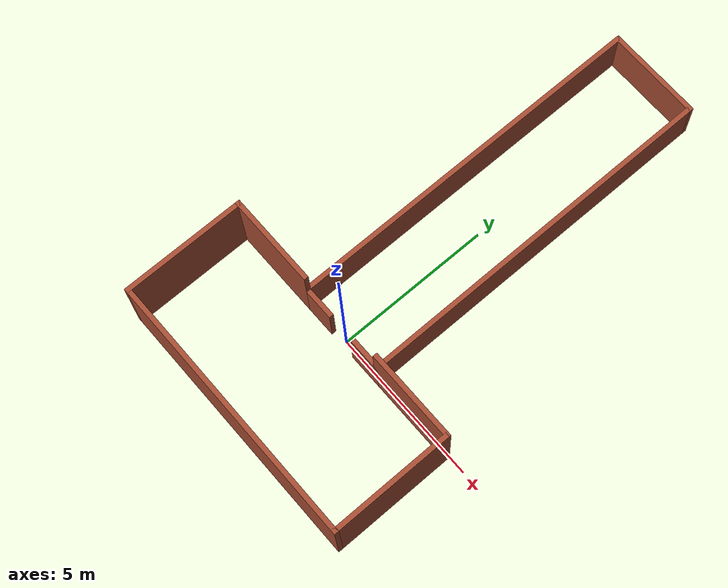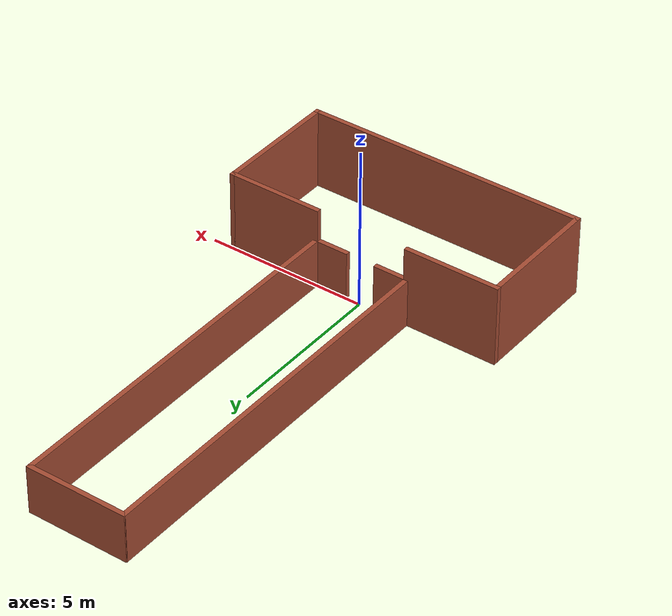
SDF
<?xml version='1.0'?>
<sdf version='1.7'>
  <model name='train_body'>
    <pose>-0.0055 3.9335 0 0 -0 0</pose>
    <link name='Wall_12'>
      <pose>0 -4.0165 0 0 -0 3.14159</pose>
      <visual name='Wall_12_Visual_0'>
        <pose>-1.01653 0 0.75 0 -0 0</pose>
        <geometry>
          <box>
            <size>1.12829 0.15 1.5</size>
          </box>
        </geometry>
        <material>
          <script>
            <uri>file://media/materials/scripts/gazebo.material</uri>
            <name>Gazebo/Bricks</name>
          </script>
          <ambient>1 1 1 1</ambient>
        </material>
        <meta>
          <layer>0</layer>
        </meta>
      </visual>
      <collision name='Wall_12_Collision_0'>
        <geometry>
          <box>
            <size>1.12829 0.15 1.5</size>
          </box>
        </geometry>
        <pose>-1.01653 0 0.75 0 -0 0</pose>
      </collision>
      <visual name='Wall_12_Visual_1'>
        <pose>1.01414 0 0.75 0 -0 0</pose>
        <geometry>
          <box>
            <size>1.13307 0.15 1.5</size>
          </box>
        </geometry>
        <material>
          <script>
            <uri>file://media/materials/scripts/gazebo.material</uri>
            <name>Gazebo/Bricks</name>
          </script>
          <ambient>1 1 1 1</ambient>
        </material>
        <meta>
          <layer>0</layer>
        </meta>
      </visual>
      <collision name='Wall_12_Collision_1'>
        <geometry>
          <box>
            <size>1.13307 0.15 1.5</size>
          </box>
        </geometry>
        <pose>1.01414 0 0.75 0 -0 0</pose>
      </collision>
    </link>
    <link name='Wall_14'>
      <collision name='Wall_14_Collision'>
        <geometry>
          <box>
            <size>12 0.15 1.5</size>
          </box>
        </geometry>
        <pose>0 0 0.75 0 -0 0</pose>
      </collision>
      <visual name='Wall_14_Visual'>
        <pose>0 0 0.75 0 -0 0</pose>
        <geometry>
          <box>
            <size>12 0.15 1.5</size>
          </box>
        </geometry>
        <material>
          <script>
            <uri>file://media/materials/scripts/gazebo.material</uri>
            <name>Gazebo/Bricks</name>
          </script>
          <ambient>1 1 1 1</ambient>
        </material>
        <meta>
          <layer>0</layer>
        </meta>
      </visual>
      <pose>1.5055 1.9085 0 0 -0 1.5708</pose>
    </link>
    <link name='Wall_17'>
      <collision name='Wall_17_Collision'>
        <geometry>
          <box>
            <size>12 0.15 1.5</size>
          </box>
        </geometry>
        <pose>0 0 0.75 0 -0 0</pose>
      </collision>
      <visual name='Wall_17_Visual'>
        <pose>0 0 0.75 0 -0 0</pose>
        <geometry>
          <box>
            <size>12 0.15 1.5</size>
          </box>
        </geometry>
        <material>
          <script>
            <uri>file://media/materials/scripts/gazebo.material</uri>
            <name>Gazebo/Bricks</name>
          </script>
          <ambient>1 1 1 1</ambient>
        </material>
        <meta>
          <layer>0</layer>
        </meta>
      </visual>
      <pose>-1.50568 1.9085 0 0 -0 1.57083</pose>
    </link>
    <link name='Wall_19'>
      <collision name='Wall_19_Collision'>
        <geometry>
          <box>
            <size>3.15 0.15 1.5</size>
          </box>
        </geometry>
        <pose>0 0 0.75 0 -0 0</pose>
      </collision>
      <visual name='Wall_19_Visual'>
        <pose>0 0 0.75 0 -0 0</pose>
        <geometry>
          <box>
            <size>3.15 0.15 1.5</size>
          </box>
        </geometry>
        <material>
          <script>
            <uri>file://media/materials/scripts/gazebo.material</uri>
            <name>Gazebo/Bricks</name>
          </script>
          <ambient>1 1 1 1</ambient>
        </material>
        <meta>
          <layer>0</layer>
        </meta>
      </visual>
      <pose>0.0055 7.8665 0 0 -0 0</pose>
    </link>
    <link name='Wall_21'>
      <collision name='Wall_21_Collision'>
        <geometry>
          <box>
            <size>3 0.15 2.5</size>
          </box>
        </geometry>
        <pose>0 0 1.25 0 -0 0</pose>
      </collision>
      <visual name='Wall_21_Visual'>
        <pose>0 0 1.25 0 -0 0</pose>
        <geometry>
          <box>
            <size>3 0.15 2.5</size>
          </box>
        </geometry>
        <material>
          <script>
            <uri>file://media/materials/scripts/gazebo.material</uri>
            <name>Gazebo/Bricks</name>
          </script>
          <ambient>1 1 1 1</ambient>
        </material>
        <meta>
          <layer>0</layer>
        </meta>
      </visual>
      <pose>-2.9305 -4.0165 0 0 -0 3.14159</pose>
    </link>
    <link name='Wall_22'>
      <collision name='Wall_22_Collision'>
        <geometry>
          <box>
            <size>4 0.15 2.5</size>
          </box>
        </geometry>
        <pose>0 0 1.25 0 -0 0</pose>
      </collision>
      <visual name='Wall_22_Visual'>
        <pose>0 0 1.25 0 -0 0</pose>
        <geometry>
          <box>
            <size>4 0.15 2.5</size>
          </box>
        </geometry>
        <material>
          <script>
            <uri>file://media/materials/scripts/gazebo.material</uri>
            <name>Gazebo/Bricks</name>
          </script>
          <ambient>1 1 1 1</ambient>
        </material>
        <meta>
          <layer>0</layer>
        </meta>
      </visual>
      <pose>-4.3555 -5.9415 0 0 -0 -1.5708</pose>
    </link>
    <link name='Wall_24'>
      <collision name='Wall_24_Collision'>
        <geometry>
          <box>
            <size>3 0.15 2.5</size>
          </box>
        </geometry>
        <pose>0 0 1.25 0 -0 0</pose>
      </collision>
      <visual name='Wall_24_Visual'>
        <pose>0 0 1.25 0 -0 0</pose>
        <geometry>
          <box>
            <size>3 0.15 2.5</size>
          </box>
        </geometry>
        <material>
          <script>
            <uri>file://media/materials/scripts/gazebo.material</uri>
            <name>Gazebo/Bricks</name>
          </script>
          <ambient>1 1 1 1</ambient>
        </material>
        <meta>
          <layer>0</layer>
        </meta>
      </visual>
      <pose>2.9305 -4.0165 0 0 -0 0</pose>
    </link>
    <link name='Wall_25'>
      <collision name='Wall_25_Collision'>
        <geometry>
          <box>
            <size>4 0.15 2.5</size>
          </box>
        </geometry>
        <pose>0 0 1.25 0 -0 0</pose>
      </collision>
      <visual name='Wall_25_Visual'>
        <pose>0 0 1.25 0 -0 0</pose>
        <geometry>
          <box>
            <size>4 0.15 2.5</size>
          </box>
        </geometry>
        <material>
          <script>
            <uri>file://media/materials/scripts/gazebo.material</uri>
            <name>Gazebo/Bricks</name>
          </script>
          <ambient>1 1 1 1</ambient>
        </material>
        <meta>
          <layer>0</layer>
        </meta>
      </visual>
      <pose>4.3555 -5.9415 0 0 -0 -1.5708</pose>
    </link>
    <link name='Wall_26'>
      <collision name='Wall_26_Collision'>
        <geometry>
          <box>
            <size>8.861 0.15 2.5</size>
          </box>
        </geometry>
        <pose>0 0 1.25 0 -0 0</pose>
      </collision>
      <visual name='Wall_26_Visual'>
        <pose>0 0 1.25 0 -0 0</pose>
        <geometry>
          <box>
            <size>8.861 0.15 2.5</size>
          </box>
        </geometry>
        <material>
          <script>
            <uri>file://media/materials/scripts/gazebo.material</uri>
            <name>Gazebo/Bricks</name>
          </script>
          <ambient>1 1 1 1</ambient>
        </material>
        <meta>
          <layer>0</layer>
        </meta>
      </visual>
      <pose>0 -7.8665 0 0 -0 3.14159</pose>
    </link>
    <static>1</static>
  </model>
</sdf>
